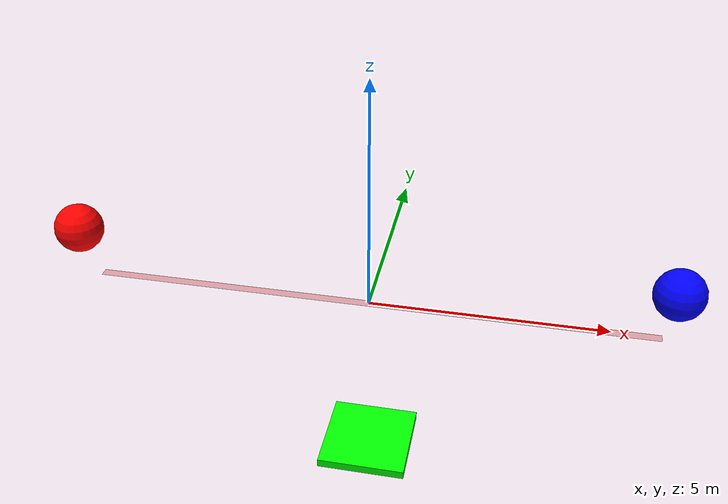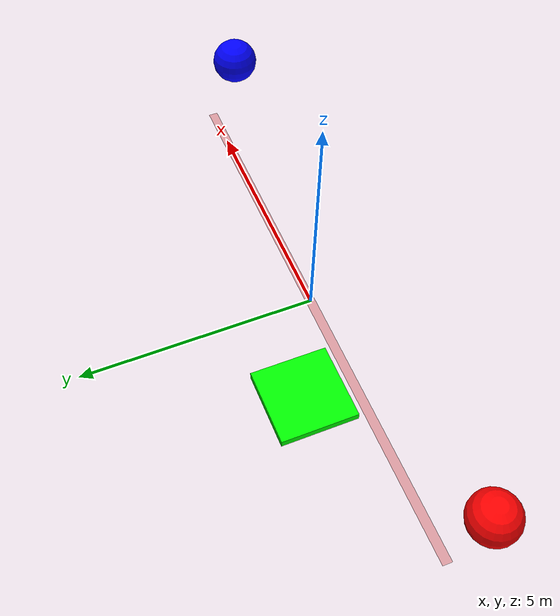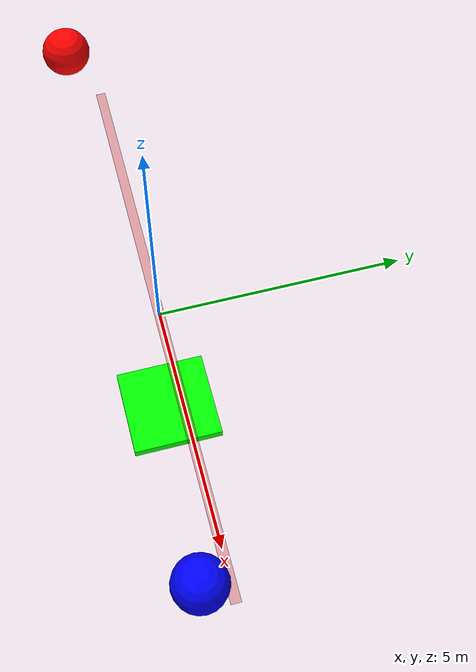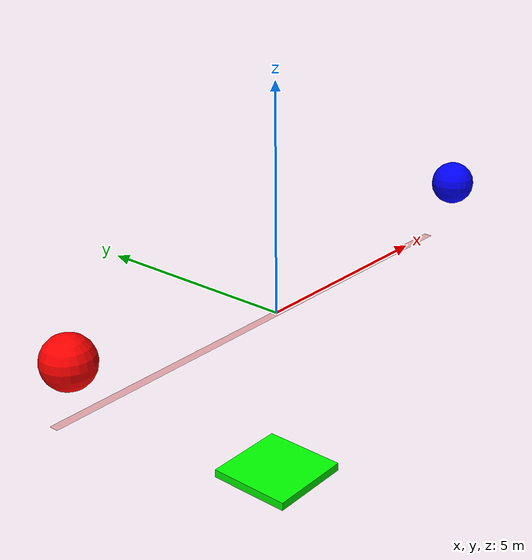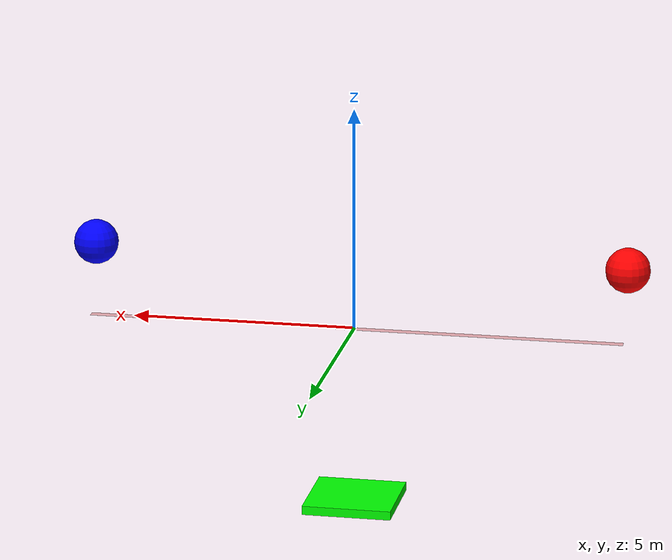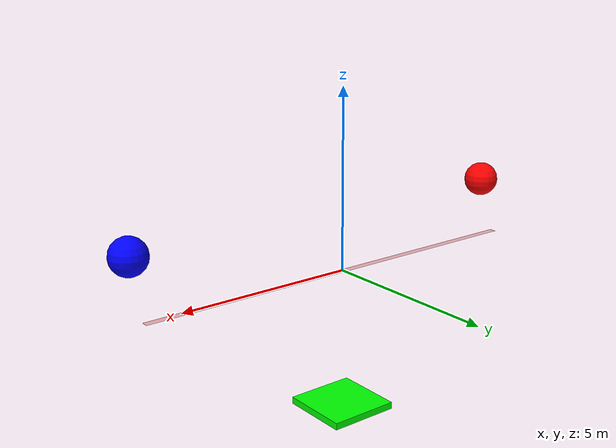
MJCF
<mujoco>
  <option gravity="0 0 -9.81"/>
  <worldbody>
    <body name="slope" pos="0 0 0">
      <geom type="plane" size="6 0.1 8" rgba="0.7 0 0 1" friction="0.2 0.2 0.2"/>
    </body>
    <body name="ground" pos="0 0 -10">
      <geom type="plane" size="30 30 0.1" rgba="0.7 0.7 0.7 1"/>
    </body>
    <body name="rolling_sphere" pos="-6 -0.6 1.5">
      <geom type="sphere" size="0.5" density="1" friction="0.05" rgba="1 0 0 1"/>
      <joint type="free"/>
    </body>
    <body name="sliding_sphere" pos="6 -0.6 1.5">
      <geom type="sphere" size="0.5" density="1" friction="0.0" rgba="0 0 1 1"/>
      <joint type="free"/>
    </body>
    <body name="goal_line" pos="0 0 -4">
      <geom type="box" size="1 1 0.1" rgba="0 1 0 1"/>
    </body>
  </worldbody>
</mujoco>
